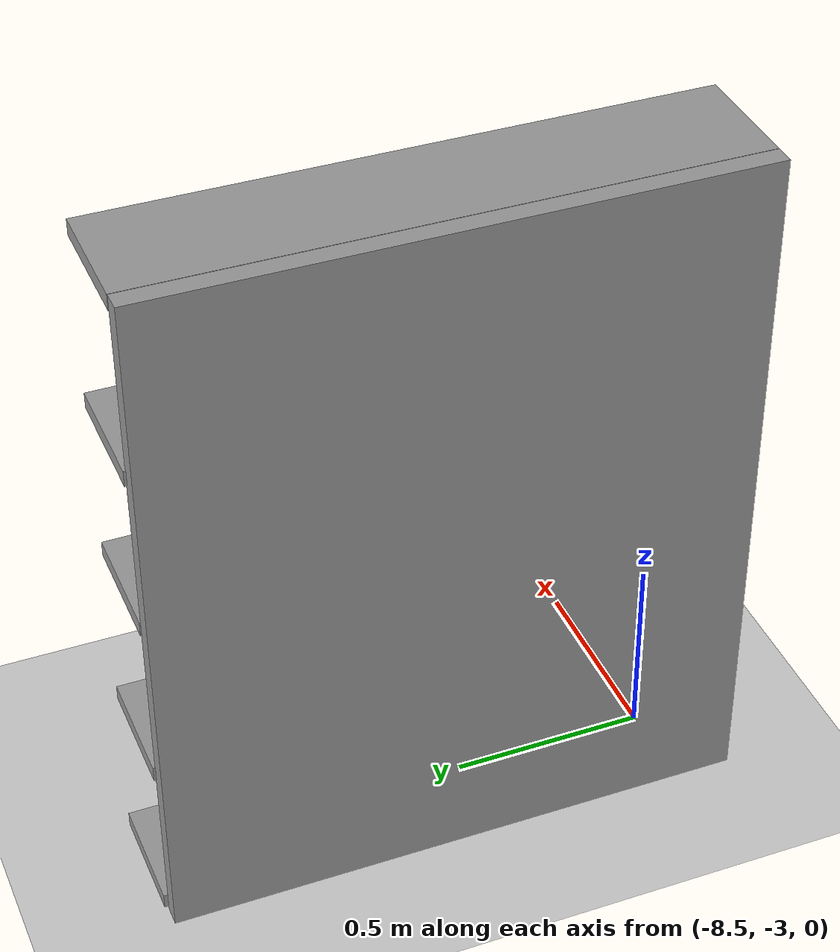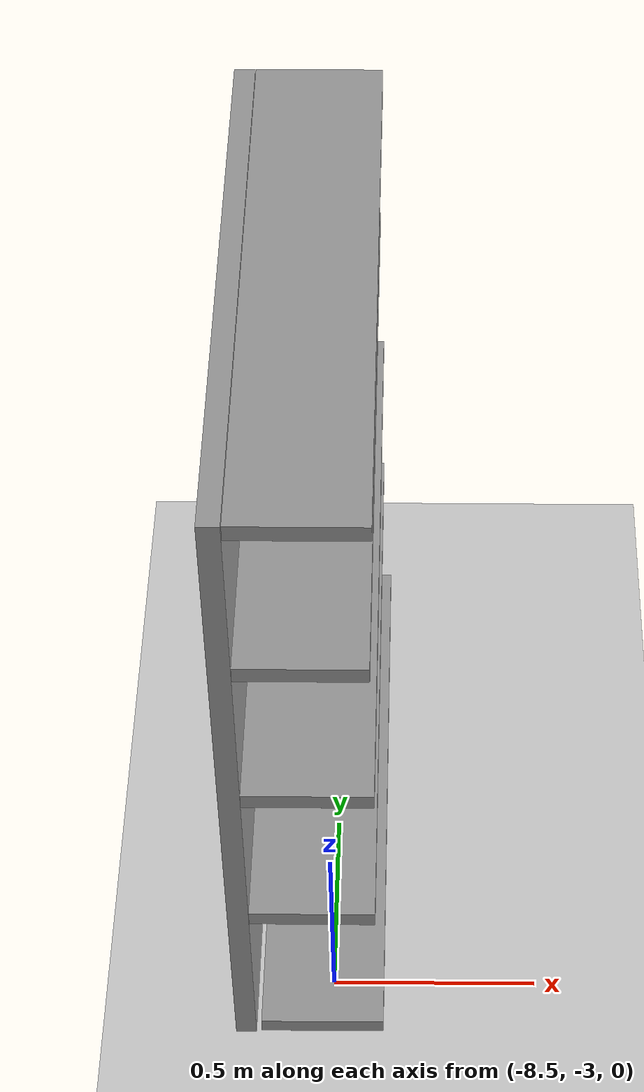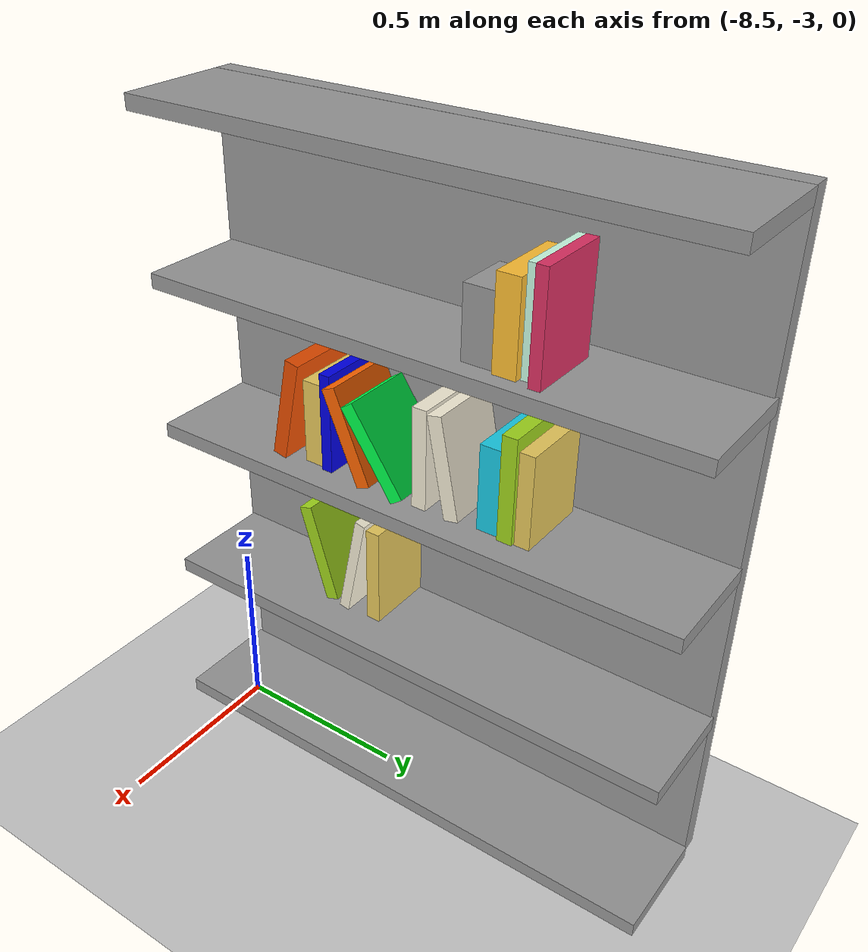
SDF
<sdf version="1.6">
 <world name="default">
  <model name="ground_plane">
   <static>1</static>
   <link name="link">
    <collision name="collision">
     <geometry><plane><normal>0 0 1</normal><size>100 100</size></plane></geometry>
     <surface>
      <contact><collide_bitmask>65535</collide_bitmask></contact>
      <friction><ode><mu>100</mu><mu2>50</mu2></ode></friction>
     </surface>
    </collision>
    <visual name="visual">
     <cast_shadows>0</cast_shadows>
     <geometry><plane><normal>0 0 1</normal><size>100 100</size></plane></geometry>
     <material>
      <script><uri>file://media/materials/scripts/gazebo.material</uri><name>Gazebo/Grey</name></script>
     </material>
    </visual>
   </link>
  </model>
  <model name="my_bookshelf">
   <link name="link">
    <inertial>
     <mass>1</mass>
     <inertia>
      <ixx>0.166667</ixx>
      <ixy>0</ixy>
      <ixz>0</ixz>
      <iyy>0.166667</iyy>
      <iyz>0</iyz>
      <izz>0.166667</izz>
     </inertia>
    </inertial>
    <pose>0.010503 -0.018536 0.006993 0 -0 0</pose>
    <visual name="visual">
     <geometry><box><size>0.05 1.5 1.8</size></box></geometry>
     <material>
      <script><name>Gazebo/Grey</name><uri>file://media/materials/scripts/gazebo.material</uri></script>
      <shader type="pixel"><normal_map>__default__</normal_map></shader>
      <ambient>0.9 0.9 0.9 1</ambient>
      <diffuse>0.9 0.9 0.9 1</diffuse>
      <specular>0.01 0.01 0.01 1</specular>
      <emissive>0 0 0 1</emissive>
     </material>
     <pose>0 0 0.9 0 -0 0</pose>
    </visual>
    <collision name="collision">
     <pose>0 0 0.9 0 -0 0</pose>
     <geometry><box><size>0.05 1.5 1.8</size></box></geometry>
     <surface>
      <friction>
       <ode><mu>1</mu><mu2>1</mu2><fdir1>0 0 0</fdir1><slip1>0</slip1><slip2>0</slip2></ode>
       <torsional>
        <coefficient>1</coefficient>
        <patch_radius>0</patch_radius>
        <surface_radius>0</surface_radius>
        <use_patch_radius>1</use_patch_radius>
        <ode><slip>0</slip></ode>
       </torsional>
      </friction>
      <bounce><restitution_coefficient>0</restitution_coefficient><threshold>1e+06</threshold></bounce>
      <contact>
       <collide_without_contact>0</collide_without_contact>
       <collide_without_contact_bitmask>1</collide_without_contact_bitmask>
       <collide_bitmask>1</collide_bitmask>
       <ode>
        <soft_cfm>0</soft_cfm>
        <soft_erp>0.2</soft_erp>
        <kp>1e+13</kp>
        <kd>1</kd>
        <max_vel>0.01</max_vel>
        <min_depth>0</min_depth>
       </ode>
       <bullet>
        <split_impulse>1</split_impulse>
        <split_impulse_penetration_threshold>-0.01</split_impulse_penetration_threshold>
        <soft_cfm>0</soft_cfm>
        <soft_erp>0.2</soft_erp>
        <kp>1e+13</kp>
        <kd>1</kd>
       </bullet>
      </contact>
     </surface>
    </collision>
   </link>
   <link name="link_0_clone_0_clone_0">
    <inertial>
     <mass>1</mass>
     <inertia>
      <ixx>0.166667</ixx>
      <ixy>0</ixy>
      <ixz>0</ixz>
      <iyy>0.166667</iyy>
      <iyz>0</iyz>
      <izz>0.166667</izz>
     </inertia>
    </inertial>
    <pose>0.13743 -0.21618 0.64809 0 -0 0</pose>
    <gravity>0</gravity>
    <visual name="visual">
     <pose>0 0 0 -0.2 0 0</pose>
     <geometry><box><size>0.2 0.03 0.3</size></box></geometry>
     <material>
      <lighting>1</lighting>
      <script><uri>file://media/materials/scripts/gazebo.material</uri><name>Gazebo/Grey</name></script>
      <shader type="pixel"><normal_map>__default__</normal_map></shader>
      <ambient>0.96 0.93 0.84 1</ambient>
      <diffuse>0.96 0.93 0.84 1</diffuse>
      <specular>0.01 0.01 0.01 1</specular>
      <emissive>0 0 0 1</emissive>
     </material>
    </visual>
    <collision name="collision">
     <pose>0 0 0 -0.2 0 0</pose>
     <geometry><box><size>0.2 0.03 0.3</size></box></geometry>
     <surface>
      <friction>
       <ode><mu>1</mu><mu2>1</mu2><fdir1>0 0 0</fdir1><slip1>0</slip1><slip2>0</slip2></ode>
       <torsional>
        <coefficient>1</coefficient>
        <patch_radius>0</patch_radius>
        <surface_radius>0</surface_radius>
        <use_patch_radius>1</use_patch_radius>
        <ode><slip>0</slip></ode>
       </torsional>
      </friction>
      <bounce><restitution_coefficient>0</restitution_coefficient><threshold>1e+06</threshold></bounce>
      <contact>
       <collide_without_contact>0</collide_without_contact>
       <collide_without_contact_bitmask>1</collide_without_contact_bitmask>
       <collide_bitmask>1</collide_bitmask>
       <ode>
        <soft_cfm>0</soft_cfm>
        <soft_erp>0.2</soft_erp>
        <kp>1e+13</kp>
        <kd>1</kd>
        <max_vel>0.01</max_vel>
        <min_depth>0</min_depth>
       </ode>
       <bullet>
        <split_impulse>1</split_impulse>
        <split_impulse_penetration_threshold>-0.01</split_impulse_penetration_threshold>
        <soft_cfm>0</soft_cfm>
        <soft_erp>0.2</soft_erp>
        <kp>1e+13</kp>
        <kd>1</kd>
       </bullet>
      </contact>
     </surface>
    </collision>
   </link>
   <link name="link_0_clone_0_clone_1">
    <inertial>
     <mass>1</mass>
     <inertia>
      <ixx>0.166667</ixx>
      <ixy>0</ixy>
      <ixz>0</ixz>
      <iyy>0.166667</iyy>
      <iyz>0</iyz>
      <izz>0.166667</izz>
     </inertia>
    </inertial>
    <pose>0.167852 0.018542 1.07916 0 -0 0</pose>
    <visual name="visual">
     <geometry><box><size>0.2 0.04 0.27</size></box></geometry>
     <material>
      <lighting>1</lighting>
      <script><uri>file://media/materials/scripts/gazebo.material</uri><name>Gazebo/Grey</name></script>
      <shader type="pixel"><normal_map>__default__</normal_map></shader>
      <ambient>0.96 0.93 0.84 1</ambient>
      <diffuse>0.96 0.93 0.84 1</diffuse>
      <specular>0.01 0.01 0.01 1</specular>
      <emissive>0 0 0 1</emissive>
     </material>
    </visual>
    <collision name="collision">
     <geometry><box><size>0.2 0.04 0.27</size></box></geometry>
     <surface>
      <friction>
       <ode><mu>1</mu><mu2>1</mu2><fdir1>0 0 0</fdir1><slip1>0</slip1><slip2>0</slip2></ode>
       <torsional>
        <coefficient>1</coefficient>
        <patch_radius>0</patch_radius>
        <surface_radius>0</surface_radius>
        <use_patch_radius>1</use_patch_radius>
        <ode><slip>0</slip></ode>
       </torsional>
      </friction>
      <bounce><restitution_coefficient>0</restitution_coefficient><threshold>1e+06</threshold></bounce>
      <contact>
       <collide_without_contact>0</collide_without_contact>
       <collide_without_contact_bitmask>1</collide_without_contact_bitmask>
       <collide_bitmask>1</collide_bitmask>
       <ode>
        <soft_cfm>0</soft_cfm>
        <soft_erp>0.2</soft_erp>
        <kp>1e+13</kp>
        <kd>1</kd>
        <max_vel>0.01</max_vel>
        <min_depth>0</min_depth>
       </ode>
       <bullet>
        <split_impulse>1</split_impulse>
        <split_impulse_penetration_threshold>-0.01</split_impulse_penetration_threshold>
        <soft_cfm>0</soft_cfm>
        <soft_erp>0.2</soft_erp>
        <kp>1e+13</kp>
        <kd>1</kd>
       </bullet>
      </contact>
     </surface>
    </collision>
   </link>
   <link name="link_0_clone_0_clone_1_clone">
    <inertial>
     <mass>1</mass>
     <inertia>
      <ixx>0.166667</ixx>
      <ixy>0</ixy>
      <ixz>0</ixz>
      <iyy>0.166667</iyy>
      <iyz>0</iyz>
      <izz>0.166667</izz>
     </inertia>
    </inertial>
    <pose>0.171551 0.087441 1.07916 0 -0 0</pose>
    <visual name="visual">
     <pose>0 0 0 0.2 -0 0</pose>
     <geometry><box><size>0.2 0.04 0.27</size></box></geometry>
     <material>
      <lighting>1</lighting>
      <script><uri>file://media/materials/scripts/gazebo.material</uri><name>Gazebo/Grey</name></script>
      <shader type="pixel"><normal_map>__default__</normal_map></shader>
      <ambient>0.96 0 0 1</ambient>
      <diffuse>0.96 0.93 0.84 1</diffuse>
      <specular>0.01 0.01 0.01 1</specular>
      <emissive>0 0 0 1</emissive>
     </material>
    </visual>
    <collision name="collision">
     <pose>0 0 0 0.2 -0 0</pose>
     <geometry><box><size>0.2 0.04 0.27</size></box></geometry>
     <surface>
      <friction>
       <ode><mu>1</mu><mu2>1</mu2><fdir1>0 0 0</fdir1><slip1>0</slip1><slip2>0</slip2></ode>
       <torsional>
        <coefficient>1</coefficient>
        <patch_radius>0</patch_radius>
        <surface_radius>0</surface_radius>
        <use_patch_radius>1</use_patch_radius>
        <ode><slip>0</slip></ode>
       </torsional>
      </friction>
      <bounce><restitution_coefficient>0</restitution_coefficient><threshold>1e+06</threshold></bounce>
      <contact>
       <collide_without_contact>0</collide_without_contact>
       <collide_without_contact_bitmask>1</collide_without_contact_bitmask>
       <collide_bitmask>1</collide_bitmask>
       <ode>
        <soft_cfm>0</soft_cfm>
        <soft_erp>0.2</soft_erp>
        <kp>1e+13</kp>
        <kd>1</kd>
        <max_vel>0.01</max_vel>
        <min_depth>0</min_depth>
       </ode>
       <bullet>
        <split_impulse>1</split_impulse>
        <split_impulse_penetration_threshold>-0.01</split_impulse_penetration_threshold>
        <soft_cfm>0</soft_cfm>
        <soft_erp>0.2</soft_erp>
        <kp>1e+13</kp>
        <kd>1</kd>
       </bullet>
      </contact>
     </surface>
    </collision>
   </link>
   <link name="link_0_clone_0_clone_1_clone_1">
    <inertial>
     <mass>1</mass>
     <inertia>
      <ixx>0.166667</ixx>
      <ixy>0</ixy>
      <ixz>0</ixz>
      <iyy>0.166667</iyy>
      <iyz>0</iyz>
      <izz>0.166667</izz>
     </inertia>
    </inertial>
    <pose>0.212864 0.174398 1.46448 0 -0 0</pose>
    <visual name="visual">
     <geometry><box><size>0.14 0.08 0.18</size></box></geometry>
     <material>
      <lighting>1</lighting>
      <script><uri>file://media/materials/scripts/gazebo.material</uri><name>Gazebo/Grey</name></script>
      <shader type="pixel"><normal_map>__default__</normal_map></shader>
      <ambient>0.945 0.95 0.95 1</ambient>
      <diffuse>0.94 0.95 0.95 1</diffuse>
      <specular>0.01 0.01 0.01 1</specular>
      <emissive>0 0 0 1</emissive>
     </material>
    </visual>
    <collision name="collision">
     <geometry><box><size>0.14 0.08 0.18</size></box></geometry>
     <surface>
      <friction>
       <ode><mu>1</mu><mu2>1</mu2><fdir1>0 0 0</fdir1><slip1>0</slip1><slip2>0</slip2></ode>
       <torsional>
        <coefficient>1</coefficient>
        <patch_radius>0</patch_radius>
        <surface_radius>0</surface_radius>
        <use_patch_radius>1</use_patch_radius>
        <ode><slip>0</slip></ode>
       </torsional>
      </friction>
      <bounce><restitution_coefficient>0</restitution_coefficient><threshold>1e+06</threshold></bounce>
      <contact>
       <collide_without_contact>0</collide_without_contact>
       <collide_without_contact_bitmask>1</collide_without_contact_bitmask>
       <collide_bitmask>1</collide_bitmask>
       <ode>
        <soft_cfm>0</soft_cfm>
        <soft_erp>0.2</soft_erp>
        <kp>1e+13</kp>
        <kd>1</kd>
        <max_vel>0.01</max_vel>
        <min_depth>0</min_depth>
       </ode>
       <bullet>
        <split_impulse>1</split_impulse>
        <split_impulse_penetration_threshold>-0.01</split_impulse_penetration_threshold>
        <soft_cfm>0</soft_cfm>
        <soft_erp>0.2</soft_erp>
        <kp>1e+13</kp>
        <kd>1</kd>
       </bullet>
      </contact>
     </surface>
    </collision>
   </link>
   <link name="link_0_clone_clone">
    <inertial>
     <mass>1</mass>
     <inertia>
      <ixx>0.166667</ixx>
      <ixy>0</ixy>
      <ixz>0</ixz>
      <iyy>0.166667</iyy>
      <iyz>0</iyz>
      <izz>0.166667</izz>
     </inertia>
    </inertial>
    <pose>0.129091 -0.335574 0.635683 0 -0 0</pose>
    <visual name="visual">
     <pose>0 0 0 0.3 -0 0</pose>
     <geometry><box><size>0.2 0.04 0.28</size></box></geometry>
     <material>
      <lighting>1</lighting>
      <script><uri>file://media/materials/scripts/gazebo.material</uri><name>Gazebo/Grey</name></script>
      <shader type="pixel"><normal_map>__default__</normal_map></shader>
      <ambient>0.63 0.84 0.11 1</ambient>
      <diffuse>0.63 0.84 0.11 1</diffuse>
      <specular>0.01 0.01 0.01 1</specular>
      <emissive>0 0 0 1</emissive>
     </material>
    </visual>
    <collision name="collision">
     <pose>0 0 0 0.3 -0 0</pose>
     <geometry><box><size>0.2 0.04 0.28</size></box></geometry>
     <surface>
      <friction>
       <ode><mu>1</mu><mu2>1</mu2><fdir1>0 0 0</fdir1><slip1>0</slip1><slip2>0</slip2></ode>
       <torsional>
        <coefficient>1</coefficient>
        <patch_radius>0</patch_radius>
        <surface_radius>0</surface_radius>
        <use_patch_radius>1</use_patch_radius>
        <ode><slip>0</slip></ode>
       </torsional>
      </friction>
      <bounce><restitution_coefficient>0</restitution_coefficient><threshold>1e+06</threshold></bounce>
      <contact>
       <collide_without_contact>0</collide_without_contact>
       <collide_without_contact_bitmask>1</collide_without_contact_bitmask>
       <collide_bitmask>1</collide_bitmask>
       <ode>
        <soft_cfm>0</soft_cfm>
        <soft_erp>0.2</soft_erp>
        <kp>1e+13</kp>
        <kd>1</kd>
        <max_vel>0.01</max_vel>
        <min_depth>0</min_depth>
       </ode>
       <bullet>
        <split_impulse>1</split_impulse>
        <split_impulse_penetration_threshold>-0.01</split_impulse_penetration_threshold>
        <soft_cfm>0</soft_cfm>
        <soft_erp>0.2</soft_erp>
        <kp>1e+13</kp>
        <kd>1</kd>
       </bullet>
      </contact>
     </surface>
    </collision>
   </link>
   <link name="link_0_clone_clone_0">
    <inertial>
     <mass>1</mass>
     <inertia>
      <ixx>0.166667</ixx>
      <ixy>0</ixy>
      <ixz>0</ixz>
      <iyy>0.166667</iyy>
      <iyz>0</iyz>
      <izz>0.166667</izz>
     </inertia>
    </inertial>
    <pose>0.125867 -0.155367 0.635683 0 -0 0</pose>
    <visual name="visual">
     <geometry><box><size>0.2 0.04 0.28</size></box></geometry>
     <material>
      <lighting>1</lighting>
      <script><uri>file://media/materials/scripts/gazebo.material</uri><name>Gazebo/Grey</name></script>
      <shader type="pixel"><normal_map>__default__</normal_map></shader>
      <ambient>0.91 0.79 0.36 1</ambient>
      <diffuse>0.91 0.79 0.36 1</diffuse>
      <specular>0.01 0.01 0.01 1</specular>
      <emissive>0 0 0 1</emissive>
     </material>
    </visual>
    <collision name="collision">
     <geometry><box><size>0.2 0.04 0.28</size></box></geometry>
     <surface>
      <friction>
       <ode><mu>1</mu><mu2>1</mu2><fdir1>0 0 0</fdir1><slip1>0</slip1><slip2>0</slip2></ode>
       <torsional>
        <coefficient>1</coefficient>
        <patch_radius>0</patch_radius>
        <surface_radius>0</surface_radius>
        <use_patch_radius>1</use_patch_radius>
        <ode><slip>0</slip></ode>
       </torsional>
      </friction>
      <bounce><restitution_coefficient>0</restitution_coefficient><threshold>1e+06</threshold></bounce>
      <contact>
       <collide_without_contact>0</collide_without_contact>
       <collide_without_contact_bitmask>1</collide_without_contact_bitmask>
       <collide_bitmask>1</collide_bitmask>
       <ode>
        <soft_cfm>0</soft_cfm>
        <soft_erp>0.2</soft_erp>
        <kp>1e+13</kp>
        <kd>1</kd>
        <max_vel>0.01</max_vel>
        <min_depth>0</min_depth>
       </ode>
       <bullet>
        <split_impulse>1</split_impulse>
        <split_impulse_penetration_threshold>-0.01</split_impulse_penetration_threshold>
        <soft_cfm>0</soft_cfm>
        <soft_erp>0.2</soft_erp>
        <kp>1e+13</kp>
        <kd>1</kd>
       </bullet>
      </contact>
     </surface>
    </collision>
   </link>
   <link name="link_0_clone_clone_1_clone_clone_0">
    <inertial>
     <mass>1</mass>
     <inertia>
      <ixx>0.166667</ixx>
      <ixy>0</ixy>
      <ixz>0</ixz>
      <iyy>0.166667</iyy>
      <iyz>0</iyz>
      <izz>0.166667</izz>
     </inertia>
    </inertial>
    <pose>0.192048 0.247985 1.48769 0 -0 0</pose>
    <visual name="visual">
     <geometry><box><size>0.2 0.06 0.23</size></box></geometry>
     <material>
      <lighting>1</lighting>
      <script><uri>file://media/materials/scripts/gazebo.material</uri><name>Gazebo/Grey</name></script>
      <shader type="pixel"><normal_map>__default__</normal_map></shader>
      <ambient>1 0.75 0.2 1</ambient>
      <diffuse>1 0.75 0.2 1</diffuse>
      <specular>0.01 0.01 0.01 1</specular>
      <emissive>0 0 0 1</emissive>
     </material>
    </visual>
    <collision name="collision">
     <geometry><box><size>0.2 0.06 0.23</size></box></geometry>
     <surface>
      <friction>
       <ode><mu>1</mu><mu2>1</mu2><fdir1>0 0 0</fdir1><slip1>0</slip1><slip2>0</slip2></ode>
       <torsional>
        <coefficient>1</coefficient>
        <patch_radius>0</patch_radius>
        <surface_radius>0</surface_radius>
        <use_patch_radius>1</use_patch_radius>
        <ode><slip>0</slip></ode>
       </torsional>
      </friction>
      <bounce><restitution_coefficient>0</restitution_coefficient><threshold>1e+06</threshold></bounce>
      <contact>
       <collide_without_contact>0</collide_without_contact>
       <collide_without_contact_bitmask>1</collide_without_contact_bitmask>
       <collide_bitmask>1</collide_bitmask>
       <ode>
        <soft_cfm>0</soft_cfm>
        <soft_erp>0.2</soft_erp>
        <kp>1e+13</kp>
        <kd>1</kd>
        <max_vel>0.01</max_vel>
        <min_depth>0</min_depth>
       </ode>
       <bullet>
        <split_impulse>1</split_impulse>
        <split_impulse_penetration_threshold>-0.01</split_impulse_penetration_threshold>
        <soft_cfm>0</soft_cfm>
        <soft_erp>0.2</soft_erp>
        <kp>1e+13</kp>
        <kd>1</kd>
       </bullet>
      </contact>
     </surface>
    </collision>
   </link>
   <link name="link_0_clone_clone_1_clone_clone_clone_clone">
    <inertial>
     <mass>1</mass>
     <inertia>
      <ixx>0.166667</ixx>
      <ixy>0</ixy>
      <ixz>0</ixz>
      <iyy>0.166667</iyy>
      <iyz>0</iyz>
      <izz>0.166667</izz>
     </inertia>
    </inertial>
    <pose>0.191585 -0.180788 1.07689 0 -0 0</pose>
    <visual name="visual">
     <pose>0 0 0 0.4 -0 0</pose>
     <geometry><box><size>0.2 0.04 0.26</size></box></geometry>
     <material>
      <lighting>1</lighting>
      <script><uri>file://media/materials/scripts/gazebo.material</uri><name>Gazebo/Grey</name></script>
      <shader type="pixel"><normal_map>__default__</normal_map></shader>
      <ambient>1 0.4 0 1</ambient>
      <diffuse>0.8 0.8 0.8 1</diffuse>
      <specular>0.01 0.01 0.01 1</specular>
      <emissive>0 0 0 1</emissive>
     </material>
    </visual>
    <collision name="collision">
     <pose>0 0 0 0.4 -0 0</pose>
     <geometry><box><size>0.2 0.04 0.26</size></box></geometry>
     <surface>
      <friction>
       <ode><mu>1</mu><mu2>1</mu2><fdir1>0 0 0</fdir1><slip1>0</slip1><slip2>0</slip2></ode>
       <torsional>
        <coefficient>1</coefficient>
        <patch_radius>0</patch_radius>
        <surface_radius>0</surface_radius>
        <use_patch_radius>1</use_patch_radius>
        <ode><slip>0</slip></ode>
       </torsional>
      </friction>
      <bounce><restitution_coefficient>0</restitution_coefficient><threshold>1e+06</threshold></bounce>
      <contact>
       <collide_without_contact>0</collide_without_contact>
       <collide_without_contact_bitmask>1</collide_without_contact_bitmask>
       <collide_bitmask>1</collide_bitmask>
       <ode>
        <soft_cfm>0</soft_cfm>
        <soft_erp>0.2</soft_erp>
        <kp>1e+13</kp>
        <kd>1</kd>
        <max_vel>0.01</max_vel>
        <min_depth>0</min_depth>
       </ode>
       <bullet>
        <split_impulse>1</split_impulse>
        <split_impulse_penetration_threshold>-0.01</split_impulse_penetration_threshold>
        <soft_cfm>0</soft_cfm>
        <soft_erp>0.2</soft_erp>
        <kp>1e+13</kp>
        <kd>1</kd>
       </bullet>
      </contact>
     </surface>
    </collision>
   </link>
   <link name="link_0_clone_clone_1_clone_clone_clone_clone_1">
    <inertial>
     <mass>1</mass>
     <inertia>
      <ixx>0.166667</ixx>
      <ixy>0</ixy>
      <ixz>0</ixz>
      <iyy>0.166667</iyy>
      <iyz>0</iyz>
      <izz>0.166667</izz>
     </inertia>
    </inertial>
    <pose>0.177653 0.295864 1.50208 0 -0 0</pose>
    <visual name="visual">
     <geometry><box><size>0.2 0.03 0.26</size></box></geometry>
     <material>
      <lighting>1</lighting>
      <script><uri>file://media/materials/scripts/gazebo.material</uri><name>Gazebo/Grey</name></script>
      <shader type="pixel"><normal_map>__default__</normal_map></shader>
      <ambient>0 1 0.9 1</ambient>
      <diffuse>0.8 1 0.9 1</diffuse>
      <specular>0.01 0.01 0.01 1</specular>
      <emissive>0 0 0 1</emissive>
     </material>
    </visual>
    <collision name="collision">
     <geometry><box><size>0.2 0.03 0.26</size></box></geometry>
     <surface>
      <friction>
       <ode><mu>1</mu><mu2>1</mu2><fdir1>0 0 0</fdir1><slip1>0</slip1><slip2>0</slip2></ode>
       <torsional>
        <coefficient>1</coefficient>
        <patch_radius>0</patch_radius>
        <surface_radius>0</surface_radius>
        <use_patch_radius>1</use_patch_radius>
        <ode><slip>0</slip></ode>
       </torsional>
      </friction>
      <bounce><restitution_coefficient>0</restitution_coefficient><threshold>1e+06</threshold></bounce>
      <contact>
       <collide_without_contact>0</collide_without_contact>
       <collide_without_contact_bitmask>1</collide_without_contact_bitmask>
       <collide_bitmask>1</collide_bitmask>
       <ode>
        <soft_cfm>0</soft_cfm>
        <soft_erp>0.2</soft_erp>
        <kp>1e+13</kp>
        <kd>1</kd>
        <max_vel>0.01</max_vel>
        <min_depth>0</min_depth>
       </ode>
       <bullet>
        <split_impulse>1</split_impulse>
        <split_impulse_penetration_threshold>-0.01</split_impulse_penetration_threshold>
        <soft_cfm>0</soft_cfm>
        <soft_erp>0.2</soft_erp>
        <kp>1e+13</kp>
        <kd>1</kd>
       </bullet>
      </contact>
     </surface>
    </collision>
   </link>
   <link name="link_0_clone_clone_2">
    <inertial>
     <mass>1</mass>
     <inertia>
      <ixx>0.166667</ixx>
      <ixy>0</ixy>
      <ixz>0</ixz>
      <iyy>0.166667</iyy>
      <iyz>0</iyz>
      <izz>0.166667</izz>
     </inertia>
    </inertial>
    <pose>0.179851 -0.38095 1.0844 0 -0 0</pose>
    <visual name="visual">
     <pose>0 0 0 -0.2 0 0</pose>
     <geometry><box><size>0.2 0.04 0.28</size></box></geometry>
     <material>
      <lighting>1</lighting>
      <script><uri>file://media/materials/scripts/gazebo.material</uri><name>Gazebo/Grey</name></script>
      <shader type="pixel"><normal_map>__default__</normal_map></shader>
      <ambient>0.91 0.3 0 1</ambient>
      <diffuse>0.7 0.7 0.7 1</diffuse>
      <specular>0.01 0.01 0.01 1</specular>
      <emissive>0 0 0 1</emissive>
     </material>
    </visual>
    <collision name="collision">
     <pose>0 0 0 -0.2 0 0</pose>
     <geometry><box><size>0.2 0.04 0.28</size></box></geometry>
     <surface>
      <friction>
       <ode><mu>1</mu><mu2>1</mu2><fdir1>0 0 0</fdir1><slip1>0</slip1><slip2>0</slip2></ode>
       <torsional>
        <coefficient>1</coefficient>
        <patch_radius>0</patch_radius>
        <surface_radius>0</surface_radius>
        <use_patch_radius>1</use_patch_radius>
        <ode><slip>0</slip></ode>
       </torsional>
      </friction>
      <bounce><restitution_coefficient>0</restitution_coefficient><threshold>1e+06</threshold></bounce>
      <contact>
       <collide_without_contact>0</collide_without_contact>
       <collide_without_contact_bitmask>1</collide_without_contact_bitmask>
       <collide_bitmask>1</collide_bitmask>
       <ode>
        <soft_cfm>0</soft_cfm>
        <soft_erp>0.2</soft_erp>
        <kp>1e+13</kp>
        <kd>1</kd>
        <max_vel>0.01</max_vel>
        <min_depth>0</min_depth>
       </ode>
       <bullet>
        <split_impulse>1</split_impulse>
        <split_impulse_penetration_threshold>-0.01</split_impulse_penetration_threshold>
        <soft_cfm>0</soft_cfm>
        <soft_erp>0.2</soft_erp>
        <kp>1e+13</kp>
        <kd>1</kd>
       </bullet>
      </contact>
     </surface>
    </collision>
   </link>
   <link name="link_0_clone_clone_3">
    <inertial>
     <mass>1</mass>
     <inertia>
      <ixx>0.166667</ixx>
      <ixy>0</ixy>
      <ixz>0</ixz>
      <iyy>0.166667</iyy>
      <iyz>0</iyz>
      <izz>0.166667</izz>
     </inertia>
    </inertial>
    <pose>0.153871 -0.311875 1.05588 0 -0 0</pose>
    <visual name="visual">
     <geometry><box><size>0.2 0.06 0.23</size></box></geometry>
     <material>
      <lighting>1</lighting>
      <script><uri>file://media/materials/scripts/gazebo.material</uri><name>Gazebo/Grey</name></script>
      <shader type="pixel"><normal_map>__default__</normal_map></shader>
      <ambient>0.91 0.79 0.36 1</ambient>
      <diffuse>0.91 0.79 0.36 1</diffuse>
      <specular>0.01 0.01 0.01 1</specular>
      <emissive>0 0 0 1</emissive>
     </material>
    </visual>
    <collision name="collision">
     <geometry><box><size>0.2 0.06 0.23</size></box></geometry>
     <surface>
      <friction>
       <ode><mu>1</mu><mu2>1</mu2><fdir1>0 0 0</fdir1><slip1>0</slip1><slip2>0</slip2></ode>
       <torsional>
        <coefficient>1</coefficient>
        <patch_radius>0</patch_radius>
        <surface_radius>0</surface_radius>
        <use_patch_radius>1</use_patch_radius>
        <ode><slip>0</slip></ode>
       </torsional>
      </friction>
      <bounce><restitution_coefficient>0</restitution_coefficient><threshold>1e+06</threshold></bounce>
      <contact>
       <collide_without_contact>0</collide_without_contact>
       <collide_without_contact_bitmask>1</collide_without_contact_bitmask>
       <collide_bitmask>1</collide_bitmask>
       <ode>
        <soft_cfm>0</soft_cfm>
        <soft_erp>0.2</soft_erp>
        <kp>1e+13</kp>
        <kd>1</kd>
        <max_vel>0.01</max_vel>
        <min_depth>0</min_depth>
       </ode>
       <bullet>
        <split_impulse>1</split_impulse>
        <split_impulse_penetration_threshold>-0.01</split_impulse_penetration_threshold>
        <soft_cfm>0</soft_cfm>
        <soft_erp>0.2</soft_erp>
        <kp>1e+13</kp>
        <kd>1</kd>
       </bullet>
      </contact>
     </surface>
    </collision>
   </link>
   <link name="link_0_clone_clone_3_clone">
    <inertial>
     <mass>1</mass>
     <inertia>
      <ixx>0.166667</ixx>
      <ixy>0</ixy>
      <ixz>0</ixz>
      <iyy>0.166667</iyy>
      <iyz>0</iyz>
      <izz>0.166667</izz>
     </inertia>
    </inertial>
    <pose>0.16451 -0.264855 1.0754 0 -0 0</pose>
    <visual name="visual">
     <geometry><box><size>0.2 0.03 0.27</size></box></geometry>
     <material>
      <lighting>1</lighting>
      <script><uri>file://media/materials/scripts/gazebo.material</uri><name>Gazebo/Grey</name></script>
      <shader type="pixel"><normal_map>__default__</normal_map></shader>
      <ambient>0 0 0.9 1</ambient>
      <diffuse>0.7 0.7 0.7 1</diffuse>
      <specular>0.01 0.01 0.01 1</specular>
      <emissive>0 0 0 1</emissive>
     </material>
    </visual>
    <collision name="collision">
     <geometry><box><size>0.2 0.03 0.27</size></box></geometry>
     <surface>
      <friction>
       <ode><mu>1</mu><mu2>1</mu2><fdir1>0 0 0</fdir1><slip1>0</slip1><slip2>0</slip2></ode>
       <torsional>
        <coefficient>1</coefficient>
        <patch_radius>0</patch_radius>
        <surface_radius>0</surface_radius>
        <use_patch_radius>1</use_patch_radius>
        <ode><slip>0</slip></ode>
       </torsional>
      </friction>
      <bounce><restitution_coefficient>0</restitution_coefficient><threshold>1e+06</threshold></bounce>
      <contact>
       <collide_without_contact>0</collide_without_contact>
       <collide_without_contact_bitmask>1</collide_without_contact_bitmask>
       <collide_bitmask>1</collide_bitmask>
       <ode>
        <soft_cfm>0</soft_cfm>
        <soft_erp>0.2</soft_erp>
        <kp>1e+13</kp>
        <kd>1</kd>
        <max_vel>0.01</max_vel>
        <min_depth>0</min_depth>
       </ode>
       <bullet>
        <split_impulse>1</split_impulse>
        <split_impulse_penetration_threshold>-0.01</split_impulse_penetration_threshold>
        <soft_cfm>0</soft_cfm>
        <soft_erp>0.2</soft_erp>
        <kp>1e+13</kp>
        <kd>1</kd>
       </bullet>
      </contact>
     </surface>
    </collision>
   </link>
   <link name="link_0_clone_clone_3_clone_0">
    <inertial>
     <mass>1</mass>
     <inertia>
      <ixx>0.166667</ixx>
      <ixy>0</ixy>
      <ixz>0</ixz>
      <iyy>0.166667</iyy>
      <iyz>0</iyz>
      <izz>0.166667</izz>
     </inertia>
    </inertial>
    <pose>0.153848 0.204861 1.05588 0 -0 0</pose>
    <visual name="visual">
     <geometry><box><size>0.2 0.06 0.23</size></box></geometry>
     <material>
      <lighting>1</lighting>
      <script><uri>file://media/materials/scripts/gazebo.material</uri><name>Gazebo/Grey</name></script>
      <shader type="pixel"><normal_map>__default__</normal_map></shader>
      <ambient>0.1 0.8 0.9 1</ambient>
      <diffuse>0.1 0.8 0.9 1</diffuse>
      <specular>0.01 0.01 0.01 1</specular>
      <emissive>0 0 0 1</emissive>
     </material>
    </visual>
    <collision name="collision">
     <geometry><box><size>0.2 0.06 0.23</size></box></geometry>
     <surface>
      <friction>
       <ode><mu>1</mu><mu2>1</mu2><fdir1>0 0 0</fdir1><slip1>0</slip1><slip2>0</slip2></ode>
       <torsional>
        <coefficient>1</coefficient>
        <patch_radius>0</patch_radius>
        <surface_radius>0</surface_radius>
        <use_patch_radius>1</use_patch_radius>
        <ode><slip>0</slip></ode>
       </torsional>
      </friction>
      <bounce><restitution_coefficient>0</restitution_coefficient><threshold>1e+06</threshold></bounce>
      <contact>
       <collide_without_contact>0</collide_without_contact>
       <collide_without_contact_bitmask>1</collide_without_contact_bitmask>
       <collide_bitmask>1</collide_bitmask>
       <ode>
        <soft_cfm>0</soft_cfm>
        <soft_erp>0.2</soft_erp>
        <kp>1e+13</kp>
        <kd>1</kd>
        <max_vel>0.01</max_vel>
        <min_depth>0</min_depth>
       </ode>
       <bullet>
        <split_impulse>1</split_impulse>
        <split_impulse_penetration_threshold>-0.01</split_impulse_penetration_threshold>
        <soft_cfm>0</soft_cfm>
        <soft_erp>0.2</soft_erp>
        <kp>1e+13</kp>
        <kd>1</kd>
       </bullet>
      </contact>
     </surface>
    </collision>
   </link>
   <link name="link_0_clone_clone_3_clone_clone_0">
    <inertial>
     <mass>1</mass>
     <inertia>
      <ixx>0.166667</ixx>
      <ixy>0</ixy>
      <ixz>0</ixz>
      <iyy>0.166667</iyy>
      <iyz>0</iyz>
      <izz>0.166667</izz>
     </inertia>
    </inertial>
    <pose>0.20211 0.327248 1.50772 0 -0 0</pose>
    <visual name="visual">
     <geometry><box><size>0.2 0.03 0.27</size></box></geometry>
     <material>
      <lighting>1</lighting>
      <script><uri>file://media/materials/scripts/gazebo.material</uri><name>Gazebo/Grey</name></script>
      <shader type="pixel"><normal_map>__default__</normal_map></shader>
      <ambient>0.87 0.19 0.39 1</ambient>
      <diffuse>0.87 0.19 0.39 1</diffuse>
      <specular>0.01 0.01 0.01 1</specular>
      <emissive>0 0 0 1</emissive>
     </material>
    </visual>
    <collision name="collision">
     <geometry><box><size>0.2 0.03 0.27</size></box></geometry>
     <surface>
      <friction>
       <ode><mu>1</mu><mu2>1</mu2><fdir1>0 0 0</fdir1><slip1>0</slip1><slip2>0</slip2></ode>
       <torsional>
        <coefficient>1</coefficient>
        <patch_radius>0</patch_radius>
        <surface_radius>0</surface_radius>
        <use_patch_radius>1</use_patch_radius>
        <ode><slip>0</slip></ode>
       </torsional>
      </friction>
      <bounce><restitution_coefficient>0</restitution_coefficient><threshold>1e+06</threshold></bounce>
      <contact>
       <collide_without_contact>0</collide_without_contact>
       <collide_without_contact_bitmask>1</collide_without_contact_bitmask>
       <collide_bitmask>1</collide_bitmask>
       <ode>
        <soft_cfm>0</soft_cfm>
        <soft_erp>0.2</soft_erp>
        <kp>1e+13</kp>
        <kd>1</kd>
        <max_vel>0.01</max_vel>
        <min_depth>0</min_depth>
       </ode>
       <bullet>
        <split_impulse>1</split_impulse>
        <split_impulse_penetration_threshold>-0.01</split_impulse_penetration_threshold>
        <soft_cfm>0</soft_cfm>
        <soft_erp>0.2</soft_erp>
        <kp>1e+13</kp>
        <kd>1</kd>
       </bullet>
      </contact>
     </surface>
    </collision>
   </link>
   <link name="link_0_clone_clone_4">
    <inertial>
     <mass>1</mass>
     <inertia>
      <ixx>0.166667</ixx>
      <ixy>0</ixy>
      <ixz>0</ixz>
      <iyy>0.166667</iyy>
      <iyz>0</iyz>
      <izz>0.166667</izz>
     </inertia>
    </inertial>
    <pose>0.157579 0.299409 1.06351 0 -0 0</pose>
    <visual name="visual">
     <geometry><box><size>0.2 0.04 0.25</size></box></geometry>
     <material>
      <lighting>1</lighting>
      <script><uri>file://media/materials/scripts/gazebo.material</uri><name>Gazebo/Grey</name></script>
      <shader type="pixel"><normal_map>__default__</normal_map></shader>
      <ambient>0.91 0.79 0.36 1</ambient>
      <diffuse>0.91 0.79 0.36 1</diffuse>
      <specular>0.01 0.01 0.01 1</specular>
      <emissive>0 0 0 1</emissive>
     </material>
    </visual>
    <collision name="collision">
     <geometry><box><size>0.2 0.04 0.25</size></box></geometry>
     <surface>
      <friction>
       <ode><mu>1</mu><mu2>1</mu2><fdir1>0 0 0</fdir1><slip1>0</slip1><slip2>0</slip2></ode>
       <torsional>
        <coefficient>1</coefficient>
        <patch_radius>0</patch_radius>
        <surface_radius>0</surface_radius>
        <use_patch_radius>1</use_patch_radius>
        <ode><slip>0</slip></ode>
       </torsional>
      </friction>
      <bounce><restitution_coefficient>0</restitution_coefficient><threshold>1e+06</threshold></bounce>
      <contact>
       <collide_without_contact>0</collide_without_contact>
       <collide_without_contact_bitmask>1</collide_without_contact_bitmask>
       <collide_bitmask>1</collide_bitmask>
       <ode>
        <soft_cfm>0</soft_cfm>
        <soft_erp>0.2</soft_erp>
        <kp>1e+13</kp>
        <kd>1</kd>
        <max_vel>0.01</max_vel>
        <min_depth>0</min_depth>
       </ode>
       <bullet>
        <split_impulse>1</split_impulse>
        <split_impulse_penetration_threshold>-0.01</split_impulse_penetration_threshold>
        <soft_cfm>0</soft_cfm>
        <soft_erp>0.2</soft_erp>
        <kp>1e+13</kp>
        <kd>1</kd>
       </bullet>
      </contact>
     </surface>
    </collision>
   </link>
   <link name="link_0_clone_clone_clone">
    <inertial>
     <mass>1</mass>
     <inertia>
      <ixx>0.166667</ixx>
      <ixy>0</ixy>
      <ixz>0</ixz>
      <iyy>0.166667</iyy>
      <iyz>0</iyz>
      <izz>0.166667</izz>
     </inertia>
    </inertial>
    <pose>0.191113 -0.103562 1.06169 0 -0 0</pose>
    <visual name="visual">
     <pose>0 0 0 0.6 -0 0</pose>
     <geometry><box><size>0.2 0.04 0.26</size></box></geometry>
     <material>
      <lighting>1</lighting>
      <script><uri>file://media/materials/scripts/gazebo.material</uri><name>Gazebo/Grey</name></script>
      <shader type="pixel"><normal_map>__default__</normal_map></shader>
      <ambient>0 1 0.3 1</ambient>
      <diffuse>0.8 0.8 0.8 1</diffuse>
      <specular>0.01 0.01 0.01 1</specular>
      <emissive>0 0 0 1</emissive>
     </material>
    </visual>
    <collision name="collision">
     <pose>0 0 0 0.6 -0 0</pose>
     <geometry><box><size>0.2 0.04 0.26</size></box></geometry>
     <surface>
      <friction>
       <ode><mu>1</mu><mu2>1</mu2><fdir1>0 0 0</fdir1><slip1>0</slip1><slip2>0</slip2></ode>
       <torsional>
        <coefficient>1</coefficient>
        <patch_radius>0</patch_radius>
        <surface_radius>0</surface_radius>
        <use_patch_radius>1</use_patch_radius>
        <ode><slip>0</slip></ode>
       </torsional>
      </friction>
      <bounce><restitution_coefficient>0</restitution_coefficient><threshold>1e+06</threshold></bounce>
      <contact>
       <collide_without_contact>0</collide_without_contact>
       <collide_without_contact_bitmask>1</collide_without_contact_bitmask>
       <collide_bitmask>1</collide_bitmask>
       <ode>
        <soft_cfm>0</soft_cfm>
        <soft_erp>0.2</soft_erp>
        <kp>1e+13</kp>
        <kd>1</kd>
        <max_vel>0.01</max_vel>
        <min_depth>0</min_depth>
       </ode>
       <bullet>
        <split_impulse>1</split_impulse>
        <split_impulse_penetration_threshold>-0.01</split_impulse_penetration_threshold>
        <soft_cfm>0</soft_cfm>
        <soft_erp>0.2</soft_erp>
        <kp>1e+13</kp>
        <kd>1</kd>
       </bullet>
      </contact>
     </surface>
    </collision>
   </link>
   <link name="link_0_clone_clone_clone_0">
    <inertial>
     <mass>1</mass>
     <inertia>
      <ixx>0.166667</ixx>
      <ixy>0</ixy>
      <ixz>0</ixz>
      <iyy>0.166667</iyy>
      <iyz>0</iyz>
      <izz>0.166667</izz>
     </inertia>
    </inertial>
    <pose>0.164689 0.256666 1.08106 0 -0 0</pose>
    <visual name="visual">
     <geometry><box><size>0.2 0.04 0.28</size></box></geometry>
     <material>
      <lighting>1</lighting>
      <script><uri>file://media/materials/scripts/gazebo.material</uri><name>Gazebo/Grey</name></script>
      <shader type="pixel"><normal_map>__default__</normal_map></shader>
      <ambient>0.63 0.84 0.11 1</ambient>
      <diffuse>0.63 0.84 0.11 1</diffuse>
      <specular>0.01 0.01 0.01 1</specular>
      <emissive>0 0 0 1</emissive>
     </material>
    </visual>
    <collision name="collision">
     <geometry><box><size>0.2 0.04 0.28</size></box></geometry>
     <surface>
      <friction>
       <ode><mu>1</mu><mu2>1</mu2><fdir1>0 0 0</fdir1><slip1>0</slip1><slip2>0</slip2></ode>
       <torsional>
        <coefficient>1</coefficient>
        <patch_radius>0</patch_radius>
        <surface_radius>0</surface_radius>
        <use_patch_radius>1</use_patch_radius>
        <ode><slip>0</slip></ode>
       </torsional>
      </friction>
      <bounce><restitution_coefficient>0</restitution_coefficient><threshold>1e+06</threshold></bounce>
      <contact>
       <collide_without_contact>0</collide_without_contact>
       <collide_without_contact_bitmask>1</collide_without_contact_bitmask>
       <collide_bitmask>1</collide_bitmask>
       <ode>
        <soft_cfm>0</soft_cfm>
        <soft_erp>0.2</soft_erp>
        <kp>1e+13</kp>
        <kd>1</kd>
        <max_vel>0.01</max_vel>
        <min_depth>0</min_depth>
       </ode>
       <bullet>
        <split_impulse>1</split_impulse>
        <split_impulse_penetration_threshold>-0.01</split_impulse_penetration_threshold>
        <soft_cfm>0</soft_cfm>
        <soft_erp>0.2</soft_erp>
        <kp>1e+13</kp>
        <kd>1</kd>
       </bullet>
      </contact>
     </surface>
    </collision>
   </link>
   <link name="link_clone">
    <inertial>
     <mass>1</mass>
     <inertia>
      <ixx>0.166667</ixx>
      <ixy>0</ixy>
      <ixz>0</ixz>
      <iyy>0.166667</iyy>
      <iyz>0</iyz>
      <izz>0.166667</izz>
     </inertia>
    </inertial>
    <pose>0.199559 -0.011174 -1.077 1.1e-05 -0.001065 2e-06</pose>
    <visual name="visual">
     <geometry><box><size>0.3 1.5 0.04</size></box></geometry>
     <material>
      <script><name>Gazebo/Grey</name><uri>file://media/materials/scripts/gazebo.material</uri></script>
      <shader type="pixel"><normal_map>__default__</normal_map></shader>
      <ambient>0.9 0.9 0.9 1</ambient>
      <diffuse>0.9 0.9 0.9 1</diffuse>
      <specular>0.01 0.01 0.01 1</specular>
      <emissive>0 0 0 1</emissive>
     </material>
     <pose>0 0 1.1 0 -0 0</pose>
    </visual>
    <collision name="collision">
     <pose>0 0 1.1 0 -0 0</pose>
     <geometry><box><size>0.3 1.5 0.04</size></box></geometry>
     <surface>
      <friction>
       <ode><mu>1</mu><mu2>1</mu2><fdir1>0 0 0</fdir1><slip1>0</slip1><slip2>0</slip2></ode>
       <torsional>
        <coefficient>1</coefficient>
        <patch_radius>0</patch_radius>
        <surface_radius>0</surface_radius>
        <use_patch_radius>1</use_patch_radius>
        <ode><slip>0</slip></ode>
       </torsional>
      </friction>
      <bounce><restitution_coefficient>0</restitution_coefficient><threshold>1e+06</threshold></bounce>
      <contact>
       <collide_without_contact>0</collide_without_contact>
       <collide_without_contact_bitmask>1</collide_without_contact_bitmask>
       <collide_bitmask>1</collide_bitmask>
       <ode>
        <soft_cfm>0</soft_cfm>
        <soft_erp>0.2</soft_erp>
        <kp>1e+13</kp>
        <kd>1</kd>
        <max_vel>0.01</max_vel>
        <min_depth>0</min_depth>
       </ode>
       <bullet>
        <split_impulse>1</split_impulse>
        <split_impulse_penetration_threshold>-0.01</split_impulse_penetration_threshold>
        <soft_cfm>0</soft_cfm>
        <soft_erp>0.2</soft_erp>
        <kp>1e+13</kp>
        <kd>1</kd>
       </bullet>
      </contact>
     </surface>
    </collision>
   </link>
   <link name="link_clone_clone">
    <inertial>
     <mass>1</mass>
     <inertia>
      <ixx>0.166667</ixx>
      <ixy>0</ixy>
      <ixz>0</ixz>
      <iyy>0.166667</iyy>
      <iyz>0</iyz>
      <izz>0.166667</izz>
     </inertia>
    </inertial>
    <pose>0.17729 -0.012222 0.249312 2.2e-05 0.000604 0.000114</pose>
    <visual name="visual">
     <geometry><box><size>0.3 1.5 0.04</size></box></geometry>
     <material>
      <script><name>Gazebo/Grey</name><uri>file://media/materials/scripts/gazebo.material</uri></script>
      <shader type="pixel"><normal_map>__default__</normal_map></shader>
      <ambient>0.9 0.9 0.9 1</ambient>
      <diffuse>0.9 0.9 0.9 1</diffuse>
      <specular>0.01 0.01 0.01 1</specular>
      <emissive>0 0 0 1</emissive>
     </material>
     <pose>0 0 1.1 0 -0 0</pose>
    </visual>
    <collision name="collision">
     <pose>0 0 1.1 0 -0 0</pose>
     <geometry><box><size>0.3 1.5 0.04</size></box></geometry>
     <surface>
      <friction>
       <ode><mu>1</mu><mu2>1</mu2><fdir1>0 0 0</fdir1><slip1>0</slip1><slip2>0</slip2></ode>
       <torsional>
        <coefficient>1</coefficient>
        <patch_radius>0</patch_radius>
        <surface_radius>0</surface_radius>
        <use_patch_radius>1</use_patch_radius>
        <ode><slip>0</slip></ode>
       </torsional>
      </friction>
      <bounce><restitution_coefficient>0</restitution_coefficient><threshold>1e+06</threshold></bounce>
      <contact>
       <collide_without_contact>0</collide_without_contact>
       <collide_without_contact_bitmask>1</collide_without_contact_bitmask>
       <collide_bitmask>1</collide_bitmask>
       <ode>
        <soft_cfm>0</soft_cfm>
        <soft_erp>0.2</soft_erp>
        <kp>1e+13</kp>
        <kd>1</kd>
        <max_vel>0.01</max_vel>
        <min_depth>0</min_depth>
       </ode>
       <bullet>
        <split_impulse>1</split_impulse>
        <split_impulse_penetration_threshold>-0.01</split_impulse_penetration_threshold>
        <soft_cfm>0</soft_cfm>
        <soft_erp>0.2</soft_erp>
        <kp>1e+13</kp>
        <kd>1</kd>
       </bullet>
      </contact>
     </surface>
    </collision>
   </link>
   <link name="link_clone_clone_0">
    <inertial>
     <mass>1</mass>
     <inertia>
      <ixx>0.166667</ixx>
      <ixy>0</ixy>
      <ixz>0</ixz>
      <iyy>0.166667</iyy>
      <iyz>0</iyz>
      <izz>0.166667</izz>
     </inertia>
    </inertial>
    <pose>0.186363 -0.017339 0.93719 2.2e-05 0.000604 0.000114</pose>
    <gravity>0</gravity>
    <visual name="visual">
     <geometry><box><size>0.3 1.5 0.04</size></box></geometry>
     <material>
      <script><name>Gazebo/Grey</name><uri>file://media/materials/scripts/gazebo.material</uri></script>
      <shader type="pixel"><normal_map>__default__</normal_map></shader>
      <ambient>0.9 0.9 0.9 1</ambient>
      <diffuse>0.9 0.9 0.9 1</diffuse>
      <specular>0.01 0.01 0.01 1</specular>
      <emissive>0 0 0 1</emissive>
     </material>
     <pose>0 0 0.85 0 -0 0</pose>
    </visual>
    <collision name="collision">
     <pose>0 0 0.85 0 -0 0</pose>
     <geometry><box><size>0.3 1.5 0.04</size></box></geometry>
     <surface>
      <friction>
       <ode><mu>1</mu><mu2>1</mu2><fdir1>0 0 0</fdir1><slip1>0</slip1><slip2>0</slip2></ode>
       <torsional>
        <coefficient>1</coefficient>
        <patch_radius>0</patch_radius>
        <surface_radius>0</surface_radius>
        <use_patch_radius>1</use_patch_radius>
        <ode><slip>0</slip></ode>
       </torsional>
      </friction>
      <bounce><restitution_coefficient>0</restitution_coefficient><threshold>1e+06</threshold></bounce>
      <contact>
       <collide_without_contact>0</collide_without_contact>
       <collide_without_contact_bitmask>1</collide_without_contact_bitmask>
       <collide_bitmask>1</collide_bitmask>
       <ode>
        <soft_cfm>0</soft_cfm>
        <soft_erp>0.2</soft_erp>
        <kp>1e+13</kp>
        <kd>1</kd>
        <max_vel>0.01</max_vel>
        <min_depth>0</min_depth>
       </ode>
       <bullet>
        <split_impulse>1</split_impulse>
        <split_impulse_penetration_threshold>-0.01</split_impulse_penetration_threshold>
        <soft_cfm>0</soft_cfm>
        <soft_erp>0.2</soft_erp>
        <kp>1e+13</kp>
        <kd>1</kd>
       </bullet>
      </contact>
     </surface>
    </collision>
   </link>
   <link name="link_clone_clone_1">
    <inertial>
     <mass>1</mass>
     <inertia>
      <ixx>0.166667</ixx>
      <ixy>0</ixy>
      <ixz>0</ixz>
      <iyy>0.166667</iyy>
      <iyz>0</iyz>
      <izz>0.166667</izz>
     </inertia>
    </inertial>
    <pose>0.18345 -0.015542 0.072067 2.2e-05 0.000604 0.000114</pose>
    <visual name="visual">
     <geometry><box><size>0.3 1.5 0.04</size></box></geometry>
     <material>
      <script><name>Gazebo/Grey</name><uri>file://media/materials/scripts/gazebo.material</uri></script>
      <shader type="pixel"><normal_map>__default__</normal_map></shader>
      <ambient>0.9 0.9 0.9 1</ambient>
      <diffuse>0.9 0.9 0.9 1</diffuse>
      <specular>0.01 0.01 0.01 1</specular>
      <emissive>0 0 0 1</emissive>
     </material>
     <pose>0 0 0.85 0 -0 0</pose>
    </visual>
    <collision name="collision">
     <pose>0 0 0.85 0 -0 0</pose>
     <geometry><box><size>0.3 1.5 0.04</size></box></geometry>
     <surface>
      <friction>
       <ode><mu>1</mu><mu2>1</mu2><fdir1>0 0 0</fdir1><slip1>0</slip1><slip2>0</slip2></ode>
       <torsional>
        <coefficient>1</coefficient>
        <patch_radius>0</patch_radius>
        <surface_radius>0</surface_radius>
        <use_patch_radius>1</use_patch_radius>
        <ode><slip>0</slip></ode>
       </torsional>
      </friction>
      <bounce><restitution_coefficient>0</restitution_coefficient><threshold>1e+06</threshold></bounce>
      <contact>
       <collide_without_contact>0</collide_without_contact>
       <collide_without_contact_bitmask>1</collide_without_contact_bitmask>
       <collide_bitmask>1</collide_bitmask>
       <ode>
        <soft_cfm>0</soft_cfm>
        <soft_erp>0.2</soft_erp>
        <kp>1e+13</kp>
        <kd>1</kd>
        <max_vel>0.01</max_vel>
        <min_depth>0</min_depth>
       </ode>
       <bullet>
        <split_impulse>1</split_impulse>
        <split_impulse_penetration_threshold>-0.01</split_impulse_penetration_threshold>
        <soft_cfm>0</soft_cfm>
        <soft_erp>0.2</soft_erp>
        <kp>1e+13</kp>
        <kd>1</kd>
       </bullet>
      </contact>
     </surface>
    </collision>
   </link>
   <link name="link_clone_clone_1_clone">
    <inertial>
     <mass>1</mass>
     <inertia>
      <ixx>0.166667</ixx>
      <ixy>0</ixy>
      <ixz>0</ixz>
      <iyy>0.166667</iyy>
      <iyz>0</iyz>
      <izz>0.166667</izz>
     </inertia>
    </inertial>
    <pose>0.179903 -0.012618 -0.37588 3.4e-05 0.002273 0.000226</pose>
    <gravity>0</gravity>
    <visual name="visual">
     <geometry><box><size>0.3 1.5 0.04</size></box></geometry>
     <material>
      <script><name>Gazebo/Grey</name><uri>file://media/materials/scripts/gazebo.material</uri></script>
      <shader type="pixel"><normal_map>__default__</normal_map></shader>
      <ambient>0.9 0.9 0.9 1</ambient>
      <diffuse>0.9 0.9 0.9 1</diffuse>
      <specular>0.01 0.01 0.01 1</specular>
      <emissive>0 0 0 1</emissive>
     </material>
     <pose>0 0 0.85 0 -0 0</pose>
    </visual>
    <collision name="collision">
     <pose>0 0 0.85 0 -0 0</pose>
     <geometry><box><size>0.3 1.5 0.04</size></box></geometry>
     <surface>
      <friction>
       <ode><mu>1</mu><mu2>1</mu2><fdir1>0 0 0</fdir1><slip1>0</slip1><slip2>0</slip2></ode>
       <torsional>
        <coefficient>1</coefficient>
        <patch_radius>0</patch_radius>
        <surface_radius>0</surface_radius>
        <use_patch_radius>1</use_patch_radius>
        <ode><slip>0</slip></ode>
       </torsional>
      </friction>
      <bounce><restitution_coefficient>0</restitution_coefficient><threshold>1e+06</threshold></bounce>
      <contact>
       <collide_without_contact>0</collide_without_contact>
       <collide_without_contact_bitmask>1</collide_without_contact_bitmask>
       <collide_bitmask>1</collide_bitmask>
       <ode>
        <soft_cfm>0</soft_cfm>
        <soft_erp>0.2</soft_erp>
        <kp>1e+13</kp>
        <kd>1</kd>
        <max_vel>0.01</max_vel>
        <min_depth>0</min_depth>
       </ode>
       <bullet>
        <split_impulse>1</split_impulse>
        <split_impulse_penetration_threshold>-0.01</split_impulse_penetration_threshold>
        <soft_cfm>0</soft_cfm>
        <soft_erp>0.2</soft_erp>
        <kp>1e+13</kp>
        <kd>1</kd>
       </bullet>
      </contact>
     </surface>
    </collision>
   </link>
   <static>1</static>
   <pose>-8.72443 -2.38459 0 0 -0 0</pose>
  </model>
 </world>
</sdf>
